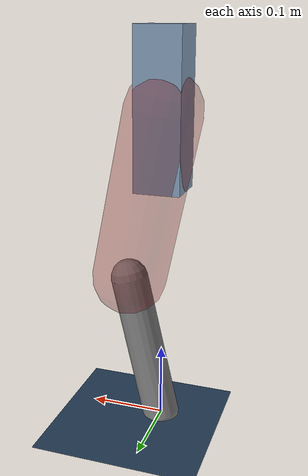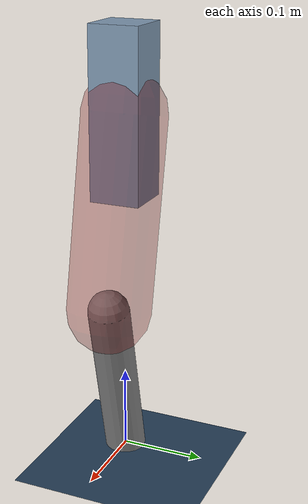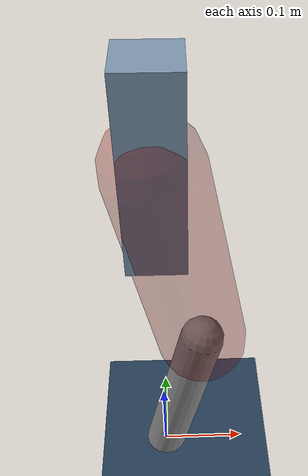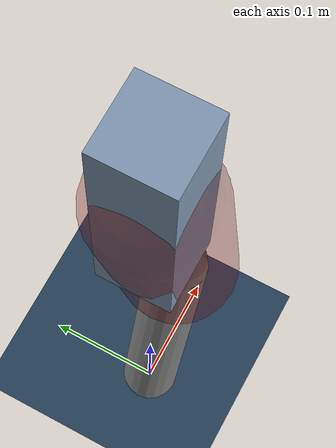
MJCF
<mujoco model="Hopper2D">
	<compiler inertiafromgeom="true" angle="radian" />
	<option timestep="0.001" integrator="implicit" cone="elliptic" solver="Newton" tolerance="1e-10" />

	<default>
		<geom contype="1" conaffinity="1" condim="3" friction="2 0.005 0.0001" solref="0.005 1" />
		<joint limited="true" damping="0.1" />
	</default>

	<asset>
		<texture name="skybox" type="skybox" builtin="gradient" rgb1=".4 .6 .8" rgb2="0 0 0" width="800" height="800" />
		<texture name="grid" type="2d" builtin="checker" rgb1=".1 .2 .3" rgb2=".2 .3 .4" width="300" height="300" mark="edge" markrgb=".2 .3 .4" />
		<material name="ground" texture="grid" texrepeat="1 1" texuniform="true" reflectance="0.1" />
		<material name="leg" rgba="0.5 0.6 0.7 1" />
	</asset>

	<worldbody>

		<geom name="floor" type="plane" size="5 5 0.25" material="ground" />

		<light directional="false" diffuse="0.8 0.8 0.8" specular="0.3 0.3 0.3" pos="0 0 2" dir="0 0 -1" />
		<light mode="targetbodycom" target="base" directional="false" diffuse="0.8 0.8 0.8" specular="0.3 0.3 0.3" pos="0 0 2" dir="0 0 -1" />

		<camera name="fixed" pos="0 -2 1" xyaxes="1 0 0 0 0 1" />
		<camera name="tracking" mode="trackcom" pos="0 -3 1" />

		<body name="root" pos="0 0 0.42360990236568186">
			<joint name="slide_x" type="slide" axis="1 0 0" range="-100 100" />
			<joint name="slide_z" type="slide" axis="0 0 1" range="0 10" />

			<body name="base" pos="0 0 0">
				<geom name="torso" type="box" size="0.03 0.03 0.1" mass="2.1799999999999997" material="leg" />

				<body name="link1" pos="0 0 0" euler="0 1.3678126597373694 0">
					<joint type="hinge" axis="0 -1 0" pos="0 0 0" name="hinge1" limited="true" range="-3.14 3.14" stiffness="0" damping="0.1" />
					<geom name="thigh" type="capsule" fromto="0 0 0 0.22924063247234538 0 0" size="0.05" rgba="0.5 0 0 0.3" mass="0.8031015811808634" />

					<body name="link2" pos="0.22924063247234538 0 0" euler="0 0.4310825775371772 0">
						<joint type="hinge" axis="0 -1 0" pos="0 0 0" name="hinge2" limited="true" range="-3.14 3.14" stiffness="0" damping="0.1" />
						<geom name="shank" type="capsule" fromto="0 0 0 0.20436926989333645 0 0" size="0.025" mass="0.4045954159146692" />

					</body>
				</body>
			</body>
		</body>
	</worldbody>

	<actuator>
		<motor name="torque1" joint="hinge1" ctrlrange="-27.95707797365986 27.95707797365986" ctrllimited="true" gear="1" />
		<motor name="torque2" joint="hinge2" ctrlrange="-35.99775057533747 35.99775057533747" ctrllimited="true" gear="1" />
	</actuator>
</mujoco>
